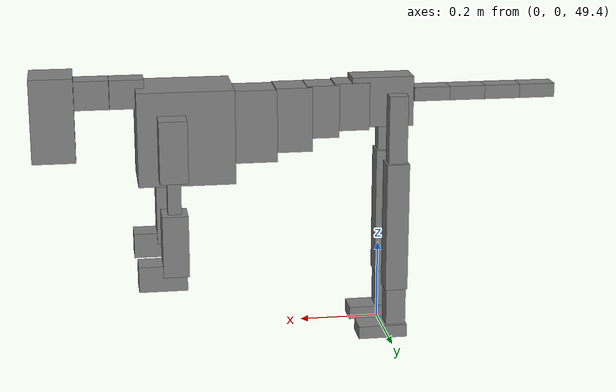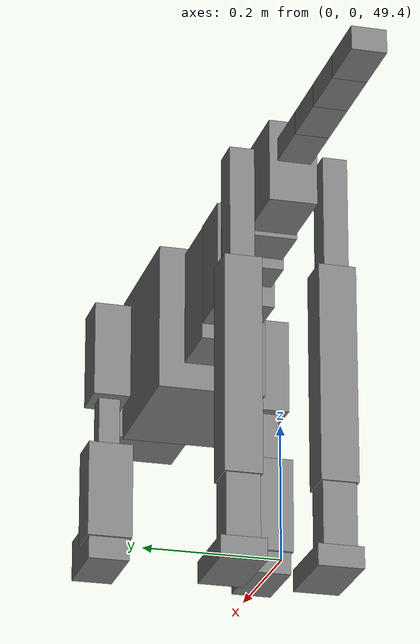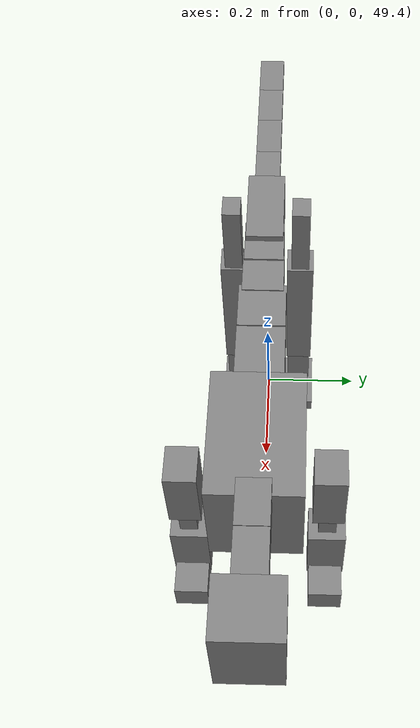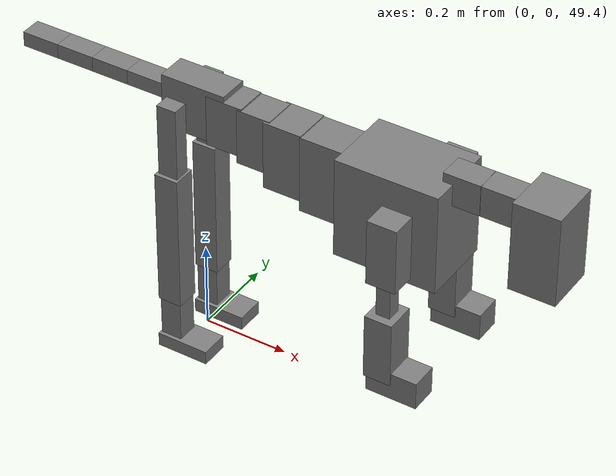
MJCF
<mujoco model="dog">

    <default>
        <joint armature="0.02" stiffness="1" damping="0.2" limited="true"/>
        <geom condim="3" friction="1 0.05 0.05" margin="0.01"/>
        <motor ctrllimited="true" ctrlrange="-1.0 1.0" forcelimited="true" gear="50"/>
    </default>

    <compiler inertiafromgeom="true" angle="radian"/>

    <option timestep="0.016" iterations="50" tolerance="1e-10" solver="Newton" jacobian="dense" cone="pyramidal"/>

    <size nconmax="20000" njmax="60000" nstack="5000000"/>
    <visual>
        <map force="0.1" zfar="30"/>
        <rgba haze="0.15 0.25 0.35 1"/>
        <quality shadowsize="2048"/>
        <global offwidth="800" offheight="800"/>
    </visual>

    <asset>
        <texture type="skybox" builtin="gradient" rgb1="0.3 0.5 0.7" rgb2="0 0 0" width="512" height="512"/>
        <texture name="texplane" type="2d" builtin="checker" rgb1=".2 .3 .4" rgb2=".1 0.15 0.2" width="512" height="512"
                 mark="cross" markrgb=".8 .8 .8"/>
        <texture name="texgeom" type="cube" builtin="flat" mark="cross" width="127" height="1278" rgb1="0.8 0.6 0.4"
                 rgb2="0.8 0.6 0.4" markrgb="1 1 1" random="0.01"/>

        <material name="matplane" reflectance="0.3" texture="texplane" texrepeat="1 1" texuniform="true"/>
        <material name="matgeom" texture="texgeom" texuniform="true" rgba="0.8 0.6 .4 1"/>
    </asset>

    <worldbody>
        <geom name="floor" pos="0 0 0" size="0 0 .25" type="plane" material="matplane" condim="3"/>

        <light directional="false" diffuse=".2 .2 .2" specular="0 0 0" pos="0 0 5" dir="0 0 -1" castshadow="false"/>
        <light mode="targetbodycom" target="torso" directional="false" diffuse=".8 .8 .8" specular="0.3 0.3 0.3"
               pos="0 0 4.0" dir="0 0 -1"/>

        <body name="root" pos="0 0 50">
            <freejoint name="root_1"/>
            <geom type="box" pos="0 0 -0.02" size="0.0774  0.0358  0.063" density="2030"/>

            <body name="spine1" pos="0.054 0 0">
                <joint name="spine1_y" axis="0 1 0" range="0 0.7" limited="true"/>
                <geom type="box" pos="0.02375 0 -0.03" size="0.04375  0.0375  0.05985" density="2030"/>

                <body name="spine2" pos="0.0612 0 0">
                    <joint name="spine2_y" axis="0 1 0" range="-0.15 0.15" limited="true"/>
                    <geom type="box" pos="0.03555  0  -0.04" size="0.04055  0.039  0.06615" density="2030"/>

                    <body name="spine3" pos="0.0730 0 0">
                        <joint name="spine3_y" axis="0 1 0" range="-0.15 0.15" limited="true"/>
                        <geom type="box" pos="0.03555  0  -0.057" size="0.04555  0.0445  0.081" density="2030"/>

                        <body name="spine4" pos="0.0780 0 0">
                            <joint name="spine4_y" axis="0 1 0" range="-0.15 0.15" limited="true"/>
                            <geom type="box" pos="0.05265  0  -0.07" size="0.05265  0.045  0.09135" density="2030"/>

                            <body name="torso" pos="0.1082 0 0">
                                <joint name="torso_y" axis="0 1 0" range="-0.15 0.15" limited="true"/>
                                <geom type="box" pos="0.11925  0  -0.085" size="0.11925  0.085  0.11745"
                                      density="2030"/>

                                <body name="neck1" pos="0.2160  0   0.0180">
                                    <joint name="neck1_y" axis="0 1 0" range="-1.2  -1" limited="true"/>
                                    <geom type="box" pos="0.0423  0  0" size="0.0423  0.03  0.036" density="2325"/>

                                    <body name="neck2" pos="0.0853  0  0">
                                        <joint name="neck2_y" axis="0 1 0" range="0.1  0" limited="true"/>
                                        <geom type="box" pos="0.0423  0  0" size="0.0423  0.03  0.036" density="2325"/>

                                        <body name="head" pos="0.0853  0  0">
                                            <joint name="head_y" axis="0 1 0" range="-0.3  -0.2" limited="true"/>
                                            <geom type="box" pos="0.0531  0  -0.055" size="0.0531  0.06  0.1044"
                                                  density="4030"/>

                                        </body>
                                    </body>
                                </body>

                                <body name="front_shoulder" pos="0.156  0   -0.0480">
                                    <joint name="front_shoulder_y" axis="0 1 0" range="-1 1.5" limited="true"/>
                                    <geom type="box" pos="0 0.13 -0.0504" size="0.0343  0.0293  0.0770" density="1158"/>
                                    <geom type="box" pos="0 -0.13 -0.0504" size="0.0343  0.0293  0.0770"
                                          density="1158"/>

                                    <body name="front_elbow" pos="0  0  -0.1008">
                                        <joint name="front_elbow_y" axis="0 1 0" range="-2 0" limited="true"/>
                                        <geom type="box" pos="0 0.13 -0.0599" size="0.0164  0.0167  0.0599"
                                              density="1081"/>
                                        <geom type="box" pos="0 -0.13 -0.0599" size="0.0164  0.0167  0.0599"
                                              density="1081"/>

                                        <body name="front_wrist" pos="0  0  -0.1197">
                                            <joint name="front_wrist_y" axis="0 1 0" range="-0.2 0" limited="true"/>
                                            <geom type="box" pos="0 0.13 -0.0637" size="0.0318  0.0354  0.0769"
                                                  density="1664"/>
                                            <geom type="box" pos="0 -0.13 -0.0637" size="0.0318  0.0354  0.0769"
                                                  density="1664"/>

                                            <body name="front_finger_end" pos="0  0  -0.1274">
                                                <joint name="front_finger_y" axis="0 1 0" range="-0.4 1"
                                                       limited="true"/>
                                                <geom type="box" pos="0.0323  0.13  -0.0171"
                                                      size="0.0591  0.0323  0.0321" density="1515"/>
                                                <geom type="box" pos="0.0323  -0.13  -0.0171"
                                                      size="0.0591  0.0323  0.0321" density="1515"/>

                                            </body>

                                        </body>
                                    </body>
                                </body>

                            </body>
                        </body>
                    </body>
                </body>
            </body>

            <body name="back_hip" pos="-0.03 0 -0.018">
                <joint name="back_hip_y" axis="0 1 0" range="-1.5 0.3" limited="true"/>
                <geom type="box" pos="0 0.07 -0.0821" size="0.0234  0.0184  0.1049" density="1154"/>
                <geom type="box" pos="0 -0.07 -0.0821" size="0.0234  0.0184  0.1049" density="1154"/>

                <body name="back_knee" pos="0  0  -0.1643">
                    <joint name="back_knee_y" axis="0 1 0" range="0 2.8" limited="true"/>
                    <geom type="box" pos="0 0.07 -0.1491" size="0.0282  0.0278  0.1647" density="1227"/>
                    <geom type="box" pos="0 -0.07 -0.1491" size="0.0282  0.0278  0.1647" density="1227"/>

                    <body name="back_ankle" pos="0  0  -0.2982">
                        <joint name="back_ankle_y" axis="0 1 0" range="-2.2 0" limited="true"/>
                        <geom type="box" pos="0 0.07 -0.0624" size="0.0249  0.0249  0.0736" density="1284"/>
                        <geom type="box" pos="0 -0.07 -0.0624" size="0.0249  0.0249  0.0736" density="1284"/>

                        <body name="back_toe_end" pos="0  0  -0.1247">
                            <joint name="back_toe_y" axis="0 1 0" range="-0.4 1" limited="true"/>
                            <geom type="box" pos="0.0337  0.07  -0.0012" size="0.0618  0.0337  0.0162" density="1515"/>
                            <geom type="box" pos="0.0337  -0.07  -0.0012" size="0.0618  0.0337  0.0162" density="1515"/>

                        </body>
                    </body>
                </body>
            </body>

            <body name="tail1" pos="-0.074 0 -0.006">
                <joint name="tail1_y" axis="0 1 0" range="-0.2 0.2" limited="true"/>
                <geom type="box" pos="-0.0536  0  0" size="0.045  0.025  0.0175" density="1587"/>

                <body name="tail2" pos="-0.09 0 0">
                    <joint name="tail2_y" axis="0 1 0" range="-0.2 0.2" limited="true"/>
                    <geom type="box" pos="-0.0536  0  0" size="0.045  0.025  0.0175" density="1587"/>

                    <body name="tail3" pos="-0.09 0 0">
                        <joint name="tail3_y" axis="0 1 0" range="-0.2 0.2" limited="true"/>
                        <geom type="box" pos="-0.0536  0  0" size="0.045  0.025  0.0175" density="1587"/>

                        <body name="tail4" pos="-0.09 0 0">
                            <joint name="tail4_y" axis="0 1 0" range="-0.2 0.2" limited="true"/>
                            <geom type="box" pos="-0.0536  0  0" size="0.045  0.025  0.0175" density="1587"/>

                        </body>
                    </body>
                </body>
            </body>
        </body>
    </worldbody>

    <actuator>
        <motor joint="spine1_y" forcerange="-150 150     "/>
        <motor joint="spine2_y" forcerange="-150 150     "/>
        <motor joint="spine3_y" forcerange="-150 150     "/>
        <motor joint="spine4_y" forcerange="-150 150     "/>
        <motor joint="torso_y" forcerange="-150 150     "/>
        <motor joint="neck1_y" forcerange="-100 100       "/>
        <motor joint="neck2_y" forcerange="-100 100       "/>
        <motor joint="head_y" forcerange="-150 150       "/>
        <motor joint="front_shoulder_y" forcerange="-126.02 169.40"/>
        <motor joint="front_elbow_y" forcerange="-121.42 100.29"/>
        <motor joint="front_wrist_y" forcerange="-142.33 140.65"/>
        <motor joint="front_finger_y" forcerange="-93.16 38.89"/>
        <motor joint="back_hip_y" forcerange="-231.65 213.35"/>
        <motor joint="back_knee_y" forcerange="-365.73 238.20"/>
        <motor joint="back_angle_y" forcerange="-245.52 52.54"/>
        <motor joint="back_toe_y" forcerange="-56.45 133.38"/>
        <motor joint="tail1_y" forcerange="-50 50     "/>
        <motor joint="tail2_y" forcerange="-50 50     "/>
        <motor joint="tail3_y" forcerange="-50 50     "/>
        <motor joint="tail4_y" forcerange="-50 50     "/>
    </actuator>
</mujoco>
